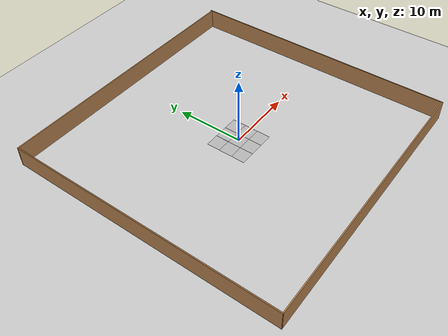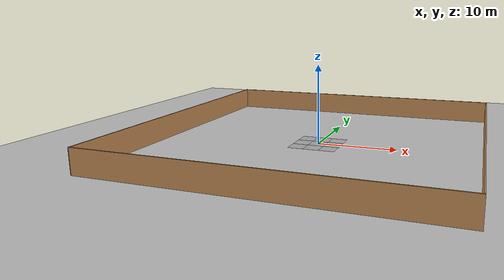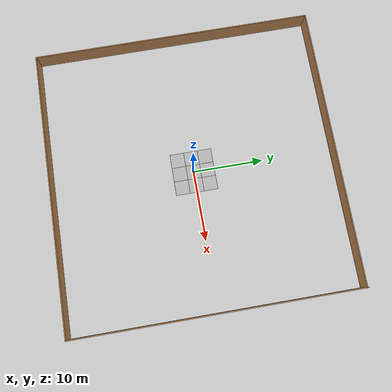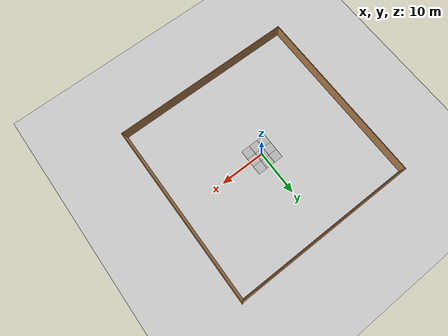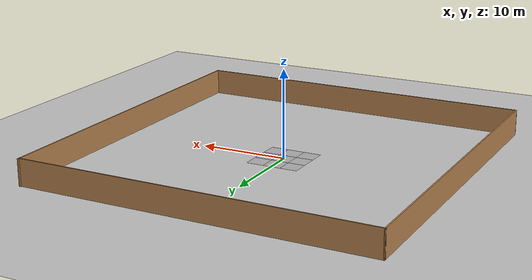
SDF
<sdf version="1.6">
 <world name="default">
  <light name="sun" type="directional">
   <pose>0 0 10 0 -0 0</pose>
   <diffuse>0.8 0.8 0.8 1</diffuse>
   <specular>0.2 0.2 0.2 1</specular>
   <attenuation>
    <range>1000</range>
    <constant>0.9</constant>
    <linear>0.01</linear>
    <quadratic>0.001</quadratic>
   </attenuation>
   <direction>-0.5 0.1 -0.9</direction>
  </light>
  <plugin name="ros_interface_plugin" filename="librotors_gazebo_ros_interface_plugin.so"/>
  <plugin name="world_gazebo" filename="libworld_gazebo.so"/>
  <scene><shadows>true</shadows></scene>
  <model name="ground_plane">
   <static>1</static>
   <link name="link">
    <collision name="collision">
     <geometry><plane><normal>0 0 1</normal><size>100 100</size></plane></geometry>
     <surface><friction><ode><mu>100</mu><mu2>50</mu2></ode></friction></surface>
    </collision>
    <visual name="visual">
     <cast_shadows>0</cast_shadows>
     <geometry><plane><normal>0 0 1</normal><size>100 100</size></plane></geometry>
     <material>
      <script><uri>file://media/materials/scripts/gazebo.material</uri><name>Gazebo/Grey</name></script>
     </material>
    </visual>
   </link>
  </model>
  <gravity>0 0 -9.8</gravity>
  <magnetic_field>6e-06 2.3e-05 -4.2e-05</magnetic_field>
  <atmosphere type="adiabatic"/>
  <physics name="default_physics" default="0" type="ode">
   <ode>
    <solver><type>quick</type><iters>10</iters><sor>1.3</sor></solver>
    <constraints>
     <cfm>0</cfm>
     <erp>0.2</erp>
     <contact_max_correcting_vel>1000</contact_max_correcting_vel>
     <contact_surface_layer>0.001</contact_surface_layer>
    </constraints>
   </ode>
   <max_step_size>0.001</max_step_size>
   <real_time_factor>1</real_time_factor>
   <real_time_update_rate>1000</real_time_update_rate>
  </physics>
  <scene><ambient>0.4 0.4 0.4 1</ambient><background>0.7 0.7 0.7 1</background><shadows>1</shadows></scene>
  <spherical_coordinates>
   <surface_model>EARTH_WGS84</surface_model>
   <latitude_deg>47.3667</latitude_deg>
   <longitude_deg>8.5500</longitude_deg>
   <elevation>500.0</elevation>
   <heading_deg>0</heading_deg>
  </spherical_coordinates>
  <model name="land_wall">
   <link name="Wall_21">
    <pose>-19.925 0.17041 0 0 0 -1.56957</pose>
    <visual name="Wall_21_Visual">
     <pose>0 0 1.5 0 -0 0</pose>
     <geometry><box><size>40 0.15 3</size></box></geometry>
     <material>
      <script><uri>file://media/materials/scripts/gazebo.material</uri><name>Gazebo/Wood</name></script>
      <ambient>1 1 1 1</ambient>
      <shader type="pixel"/>
     </material>
     <meta><layer>0</layer></meta>
    </visual>
    <collision name="Wall_21_Collision">
     <pose>0 0 1.5 0 -0 0</pose>
     <geometry><box><size>40 0.15 3</size></box></geometry>
     <surface>
      <friction>
       <ode><mu>1</mu><mu2>1</mu2><fdir1>0 0 0</fdir1><slip1>0</slip1><slip2>0</slip2></ode>
       <torsional>
        <coefficient>1</coefficient>
        <patch_radius>0</patch_radius>
        <surface_radius>0</surface_radius>
        <use_patch_radius>1</use_patch_radius>
        <ode><slip>0</slip></ode>
       </torsional>
      </friction>
      <bounce><restitution_coefficient>0</restitution_coefficient><threshold>1e+06</threshold></bounce>
      <contact>
       <collide_without_contact>0</collide_without_contact>
       <collide_without_contact_bitmask>1</collide_without_contact_bitmask>
       <collide_bitmask>1</collide_bitmask>
       <ode>
        <soft_cfm>0</soft_cfm>
        <soft_erp>0.2</soft_erp>
        <kp>1e+13</kp>
        <kd>1</kd>
        <max_vel>0.01</max_vel>
        <min_depth>0</min_depth>
       </ode>
       <bullet>
        <split_impulse>1</split_impulse>
        <split_impulse_penetration_threshold>-0.01</split_impulse_penetration_threshold>
        <soft_cfm>0</soft_cfm>
        <soft_erp>0.2</soft_erp>
        <kp>1e+13</kp>
        <kd>1</kd>
       </bullet>
      </contact>
     </surface>
    </collision>
   </link>
   <link name="Wall_24">
    <pose>0.0245 -19.925 0 0 0 -0.008552</pose>
    <visual name="Wall_24_Visual">
     <pose>0 0 1.5 0 -0 0</pose>
     <geometry><box><size>40.0015 0.15 3</size></box></geometry>
     <material>
      <script><uri>file://media/materials/scripts/gazebo.material</uri><name>Gazebo/Wood</name></script>
      <ambient>1 1 1 1</ambient>
      <shader type="pixel"/>
     </material>
     <meta><layer>0</layer></meta>
    </visual>
    <collision name="Wall_24_Collision">
     <pose>0 0 1.5 0 -0 0</pose>
     <geometry><box><size>40.0015 0.15 3</size></box></geometry>
     <surface>
      <friction>
       <ode><mu>1</mu><mu2>1</mu2><fdir1>0 0 0</fdir1><slip1>0</slip1><slip2>0</slip2></ode>
       <torsional>
        <coefficient>1</coefficient>
        <patch_radius>0</patch_radius>
        <surface_radius>0</surface_radius>
        <use_patch_radius>1</use_patch_radius>
        <ode><slip>0</slip></ode>
       </torsional>
      </friction>
      <bounce><restitution_coefficient>0</restitution_coefficient><threshold>1e+06</threshold></bounce>
      <contact>
       <collide_without_contact>0</collide_without_contact>
       <collide_without_contact_bitmask>1</collide_without_contact_bitmask>
       <collide_bitmask>1</collide_bitmask>
       <ode>
        <soft_cfm>0</soft_cfm>
        <soft_erp>0.2</soft_erp>
        <kp>1e+13</kp>
        <kd>1</kd>
        <max_vel>0.01</max_vel>
        <min_depth>0</min_depth>
       </ode>
       <bullet>
        <split_impulse>1</split_impulse>
        <split_impulse_penetration_threshold>-0.01</split_impulse_penetration_threshold>
        <soft_cfm>0</soft_cfm>
        <soft_erp>0.2</soft_erp>
        <kp>1e+13</kp>
        <kd>1</kd>
       </bullet>
      </contact>
     </surface>
    </collision>
   </link>
   <link name="Wall_26">
    <pose>-0.0245 19.925 0 0 0 -0.008552</pose>
    <visual name="Wall_26_Visual">
     <pose>0 0 1.5 0 -0 0</pose>
     <geometry><box><size>40.0015 0.15 3</size></box></geometry>
     <material>
      <script><uri>file://media/materials/scripts/gazebo.material</uri><name>Gazebo/Wood</name></script>
      <ambient>1 1 1 1</ambient>
      <shader type="pixel"/>
     </material>
     <meta><layer>0</layer></meta>
    </visual>
    <collision name="Wall_26_Collision">
     <pose>0 0 1.5 0 -0 0</pose>
     <geometry><box><size>40.0015 0.15 3</size></box></geometry>
     <surface>
      <friction>
       <ode><mu>1</mu><mu2>1</mu2><fdir1>0 0 0</fdir1><slip1>0</slip1><slip2>0</slip2></ode>
       <torsional>
        <coefficient>1</coefficient>
        <patch_radius>0</patch_radius>
        <surface_radius>0</surface_radius>
        <use_patch_radius>1</use_patch_radius>
        <ode><slip>0</slip></ode>
       </torsional>
      </friction>
      <bounce><restitution_coefficient>0</restitution_coefficient><threshold>1e+06</threshold></bounce>
      <contact>
       <collide_without_contact>0</collide_without_contact>
       <collide_without_contact_bitmask>1</collide_without_contact_bitmask>
       <collide_bitmask>1</collide_bitmask>
       <ode>
        <soft_cfm>0</soft_cfm>
        <soft_erp>0.2</soft_erp>
        <kp>1e+13</kp>
        <kd>1</kd>
        <max_vel>0.01</max_vel>
        <min_depth>0</min_depth>
       </ode>
       <bullet>
        <split_impulse>1</split_impulse>
        <split_impulse_penetration_threshold>-0.01</split_impulse_penetration_threshold>
        <soft_cfm>0</soft_cfm>
        <soft_erp>0.2</soft_erp>
        <kp>1e+13</kp>
        <kd>1</kd>
       </bullet>
      </contact>
     </surface>
    </collision>
   </link>
   <link name="Wall_28">
    <pose>19.925 0 0 0 0 -1.56957</pose>
    <visual name="Wall_28_Visual">
     <pose>0 0 1.5 0 -0 0</pose>
     <geometry><box><size>40 0.15 3</size></box></geometry>
     <material>
      <script><uri>file://media/materials/scripts/gazebo.material</uri><name>Gazebo/Wood</name></script>
      <ambient>1 1 1 1</ambient>
      <shader type="pixel"/>
     </material>
     <meta><layer>0</layer></meta>
    </visual>
    <collision name="Wall_28_Collision">
     <pose>0 0 1.5 0 -0 0</pose>
     <geometry><box><size>40 0.15 3</size></box></geometry>
     <surface>
      <friction>
       <ode><mu>1</mu><mu2>1</mu2><fdir1>0 0 0</fdir1><slip1>0</slip1><slip2>0</slip2></ode>
       <torsional>
        <coefficient>1</coefficient>
        <patch_radius>0</patch_radius>
        <surface_radius>0</surface_radius>
        <use_patch_radius>1</use_patch_radius>
        <ode><slip>0</slip></ode>
       </torsional>
      </friction>
      <bounce><restitution_coefficient>0</restitution_coefficient><threshold>1e+06</threshold></bounce>
      <contact>
       <collide_without_contact>0</collide_without_contact>
       <collide_without_contact_bitmask>1</collide_without_contact_bitmask>
       <collide_bitmask>1</collide_bitmask>
       <ode>
        <soft_cfm>0</soft_cfm>
        <soft_erp>0.2</soft_erp>
        <kp>1e+13</kp>
        <kd>1</kd>
        <max_vel>0.01</max_vel>
        <min_depth>0</min_depth>
       </ode>
       <bullet>
        <split_impulse>1</split_impulse>
        <split_impulse_penetration_threshold>-0.01</split_impulse_penetration_threshold>
        <soft_cfm>0</soft_cfm>
        <soft_erp>0.2</soft_erp>
        <kp>1e+13</kp>
        <kd>1</kd>
       </bullet>
      </contact>
     </surface>
    </collision>
   </link>
   <static>1</static>
  </model>
  <model name="home_mat">
   <link name="landing_mat">
    <pose>0 0 0.02 0 -0 0</pose>
    <visual name="mat">
     <geometry><mesh><uri>model://landing_mat/landing_mat.dae</uri></mesh></geometry>
     <material><shader type="pixel"/></material>
    </visual>
   </link>
   <static>1</static>
   <pose>-2.00718 0.011235 0 0 -0 0</pose>
  </model>
  <model name="home_mat_clone">
   <link name="landing_mat">
    <pose>0 0 0.02 0 -0 0</pose>
    <visual name="mat">
     <geometry><mesh><uri>model://landing_mat/landing_mat.dae</uri></mesh></geometry>
     <material><shader type="pixel"/></material>
    </visual>
   </link>
   <static>1</static>
   <pose>1.9977 1.99819 0 0 -0 0</pose>
  </model>
  <model name="home_mat_clone_0">
   <link name="landing_mat">
    <pose>0 0 0.02 0 -0 0</pose>
    <visual name="mat">
     <geometry><mesh><uri>model://landing_mat/landing_mat.dae</uri></mesh></geometry>
     <material><shader type="pixel"/></material>
    </visual>
   </link>
   <static>1</static>
   <pose>-2.00355 1.99948 0 0 -0 0</pose>
  </model>
  <model name="home_mat_clone_1">
   <link name="landing_mat">
    <pose>0 0 0.02 0 -0 0</pose>
    <visual name="mat">
     <geometry><mesh><uri>model://landing_mat/landing_mat.dae</uri></mesh></geometry>
     <material><shader type="pixel"/></material>
    </visual>
   </link>
   <static>1</static>
   <pose>0.001777 1.99711 0 0 -0 0</pose>
  </model>
  <model name="home_mat_clone_2">
   <link name="landing_mat">
    <pose>0 0 0.02 0 -0 0</pose>
    <visual name="mat">
     <geometry><mesh><uri>model://landing_mat/landing_mat.dae</uri></mesh></geometry>
     <material><shader type="pixel"/></material>
    </visual>
   </link>
   <static>1</static>
   <pose>-0.005691 0.013978 0 0 -0 0</pose>
  </model>
  <model name="home_mat_clone_3">
   <link name="landing_mat">
    <pose>0 0 0.02 0 -0 0</pose>
    <visual name="mat">
     <geometry><mesh><uri>model://landing_mat/landing_mat.dae</uri></mesh></geometry>
     <material><shader type="pixel"/></material>
    </visual>
   </link>
   <static>1</static>
   <pose>1.99537 0.010116 0 0 -0 0</pose>
  </model>
  <model name="home_mat_clone_4">
   <link name="landing_mat">
    <pose>0 0 0.02 0 -0 0</pose>
    <visual name="mat">
     <geometry><mesh><uri>model://landing_mat/landing_mat.dae</uri></mesh></geometry>
     <material><shader type="pixel"/></material>
    </visual>
   </link>
   <static>1</static>
   <pose>1.99965 -1.98372 0 0 -0 0</pose>
  </model>
  <model name="home_mat_clone_5">
   <link name="landing_mat">
    <pose>0 0 0.02 0 -0 0</pose>
    <visual name="mat">
     <geometry><mesh><uri>model://landing_mat/landing_mat.dae</uri></mesh></geometry>
     <material><shader type="pixel"/></material>
    </visual>
   </link>
   <static>1</static>
   <pose>-0.003398 -1.98326 0 0 -0 0</pose>
  </model>
  <model name="home_mat_clone_6">
   <link name="landing_mat">
    <pose>0 0 0.02 0 -0 0</pose>
    <visual name="mat">
     <geometry><mesh><uri>model://landing_mat/landing_mat.dae</uri></mesh></geometry>
     <material><shader type="pixel"/></material>
    </visual>
   </link>
   <static>1</static>
   <pose>-2.00203 -1.98208 0 0 -0 0</pose>
  </model>
 </world>
</sdf>
